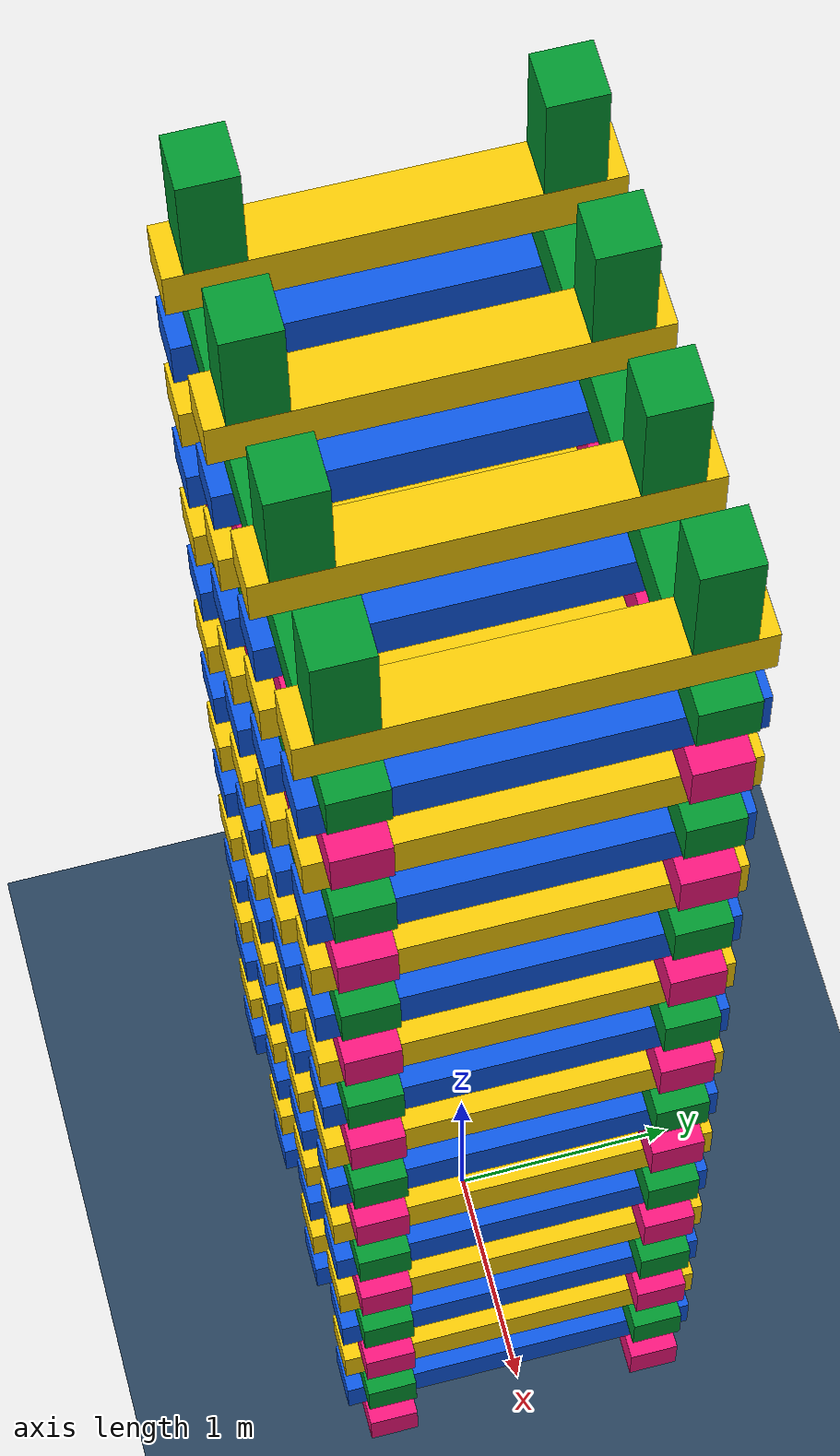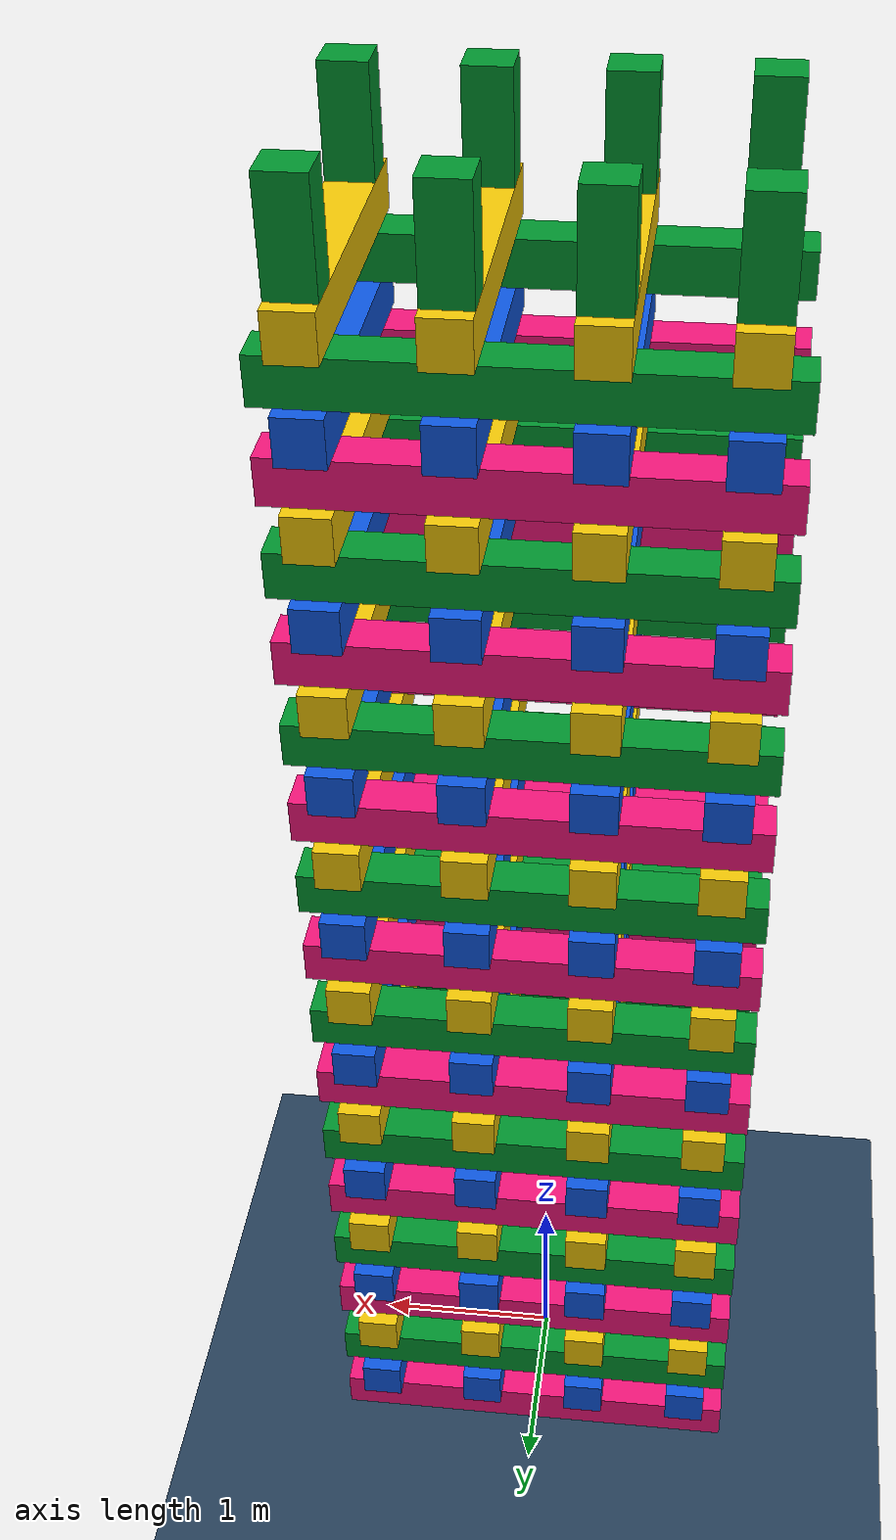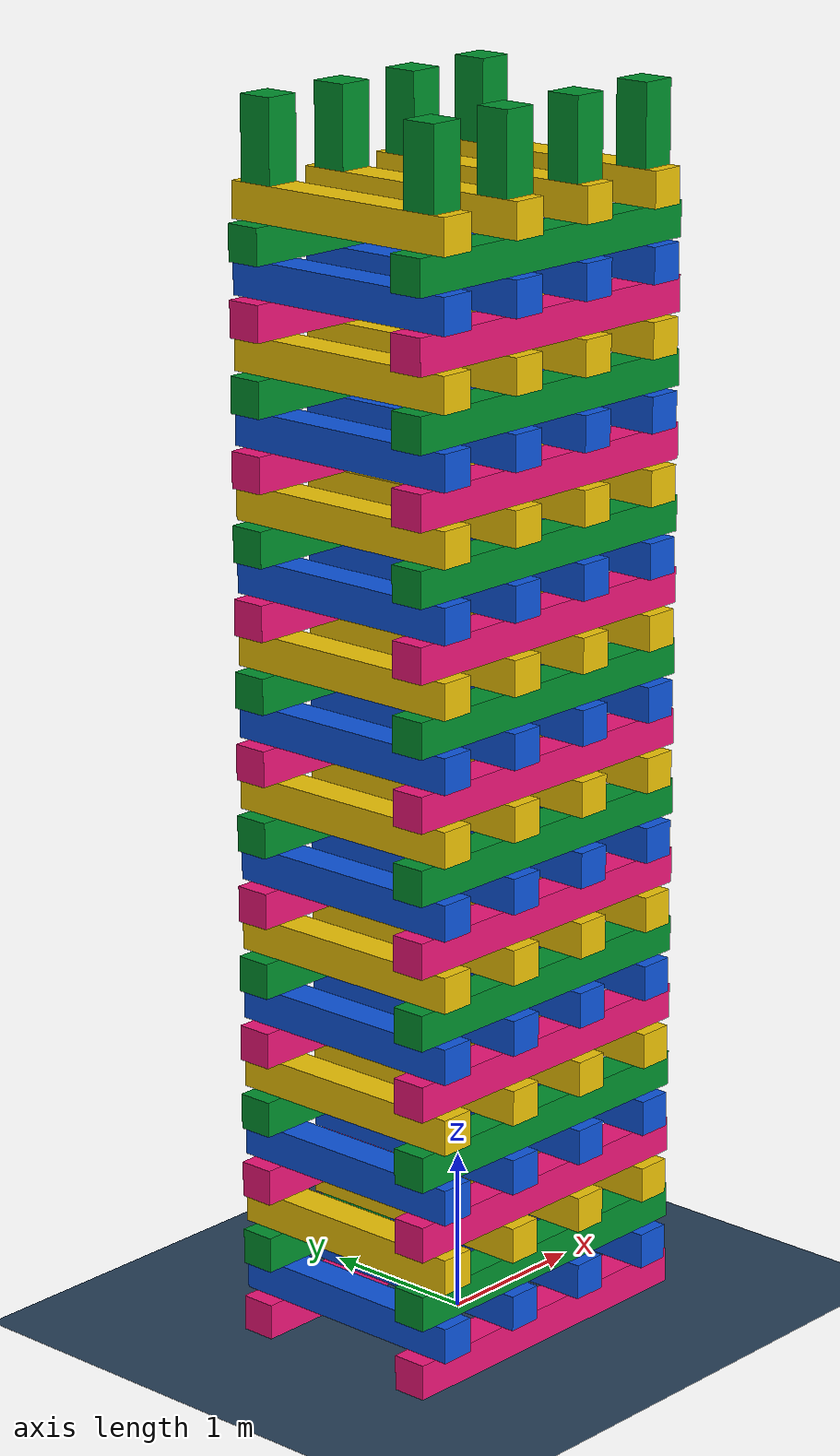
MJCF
<mujoco>
  <visual>
    <headlight diffuse="0.6 0.6 0.6" ambient="0.1 0.1 0.1" specular="0 0 0"/>
    <rgba haze="0.15 0.25 0.35 1"/>
    <global azimuth="130" elevation="-18"/>
  </visual>
  <asset>
    <texture type="skybox" builtin="gradient" rgb1="0.3 0.5 0.7" rgb2="0 0 0" width="512" height="3072"/>
    <texture type="2d" name="groundplane" builtin="checker" mark="edge" rgb1="0.2 0.3 0.4" rgb2="0.1 0.2 0.3" markrgb="0.8 0.8 0.8" width="300" height="300"/>
    <material name="groundplane" texture="groundplane" texuniform="true" texrepeat="5 5" reflectance="0.2"/>
  </asset>
  <worldbody>
    <light pos="0 0 1.5" dir="0 0 -1" directional="true"/>
    <geom name="floor" size="0 0 0.05" type="plane" material="groundplane"/>
    <body pos="0.0000 -0.6200 0.1100" euler="0 0 0">
      <geom type="box" size="1.1200 0.1100 0.1100" rgba="0.950 0.080 0.480 1"/>
      <freejoint/>
    </body>
    <body pos="0.0000 0.6200 0.1100" euler="0 0 0">
      <geom type="box" size="1.1200 0.1100 0.1100" rgba="0.950 0.080 0.480 1"/>
      <freejoint/>
    </body>
    <body pos="-0.9000 0.0000 0.3300" euler="0 0 0">
      <geom type="box" size="0.1100 0.8064 0.1100" rgba="0.050 0.340 0.880 1"/>
      <freejoint/>
    </body>
    <body pos="-0.3000 0.0000 0.3300" euler="0 0 0">
      <geom type="box" size="0.1100 0.8064 0.1100" rgba="0.050 0.340 0.880 1"/>
      <freejoint/>
    </body>
    <body pos="0.3000 0.0000 0.3300" euler="0 0 0">
      <geom type="box" size="0.1100 0.8064 0.1100" rgba="0.050 0.340 0.880 1"/>
      <freejoint/>
    </body>
    <body pos="0.9000 0.0000 0.3300" euler="0 0 0">
      <geom type="box" size="0.1100 0.8064 0.1100" rgba="0.050 0.340 0.880 1"/>
      <freejoint/>
    </body>
    <body pos="0.0000 -0.6200 0.5500" euler="0 0 0">
      <geom type="box" size="1.1200 0.1100 0.1100" rgba="0.000 0.580 0.180 1"/>
      <freejoint/>
    </body>
    <body pos="0.0000 0.6200 0.5500" euler="0 0 0">
      <geom type="box" size="1.1200 0.1100 0.1100" rgba="0.000 0.580 0.180 1"/>
      <freejoint/>
    </body>
    <body pos="-0.9000 0.0000 0.7700" euler="0 0 0">
      <geom type="box" size="0.1100 0.8064 0.1100" rgba="0.950 0.780 0.020 1"/>
      <freejoint/>
    </body>
    <body pos="-0.3000 0.0000 0.7700" euler="0 0 0">
      <geom type="box" size="0.1100 0.8064 0.1100" rgba="0.950 0.780 0.020 1"/>
      <freejoint/>
    </body>
    <body pos="0.3000 0.0000 0.7700" euler="0 0 0">
      <geom type="box" size="0.1100 0.8064 0.1100" rgba="0.950 0.780 0.020 1"/>
      <freejoint/>
    </body>
    <body pos="0.9000 0.0000 0.7700" euler="0 0 0">
      <geom type="box" size="0.1100 0.8064 0.1100" rgba="0.950 0.780 0.020 1"/>
      <freejoint/>
    </body>
    <body pos="0.0000 -0.6200 0.9900" euler="0 0 0">
      <geom type="box" size="1.1200 0.1100 0.1100" rgba="0.950 0.080 0.480 1"/>
      <freejoint/>
    </body>
    <body pos="0.0000 0.6200 0.9900" euler="0 0 0">
      <geom type="box" size="1.1200 0.1100 0.1100" rgba="0.950 0.080 0.480 1"/>
      <freejoint/>
    </body>
    <body pos="-0.9000 0.0000 1.2100" euler="0 0 0">
      <geom type="box" size="0.1100 0.8064 0.1100" rgba="0.050 0.340 0.880 1"/>
      <freejoint/>
    </body>
    <body pos="-0.3000 0.0000 1.2100" euler="0 0 0">
      <geom type="box" size="0.1100 0.8064 0.1100" rgba="0.050 0.340 0.880 1"/>
      <freejoint/>
    </body>
    <body pos="0.3000 0.0000 1.2100" euler="0 0 0">
      <geom type="box" size="0.1100 0.8064 0.1100" rgba="0.050 0.340 0.880 1"/>
      <freejoint/>
    </body>
    <body pos="0.9000 0.0000 1.2100" euler="0 0 0">
      <geom type="box" size="0.1100 0.8064 0.1100" rgba="0.050 0.340 0.880 1"/>
      <freejoint/>
    </body>
    <body pos="0.0000 -0.6200 1.4300" euler="0 0 0">
      <geom type="box" size="1.1200 0.1100 0.1100" rgba="0.000 0.580 0.180 1"/>
      <freejoint/>
    </body>
    <body pos="0.0000 0.6200 1.4300" euler="0 0 0">
      <geom type="box" size="1.1200 0.1100 0.1100" rgba="0.000 0.580 0.180 1"/>
      <freejoint/>
    </body>
    <body pos="-0.9000 0.0000 1.6500" euler="0 0 0">
      <geom type="box" size="0.1100 0.8064 0.1100" rgba="0.950 0.780 0.020 1"/>
      <freejoint/>
    </body>
    <body pos="-0.3000 0.0000 1.6500" euler="0 0 0">
      <geom type="box" size="0.1100 0.8064 0.1100" rgba="0.950 0.780 0.020 1"/>
      <freejoint/>
    </body>
    <body pos="0.3000 0.0000 1.6500" euler="0 0 0">
      <geom type="box" size="0.1100 0.8064 0.1100" rgba="0.950 0.780 0.020 1"/>
      <freejoint/>
    </body>
    <body pos="0.9000 0.0000 1.6500" euler="0 0 0">
      <geom type="box" size="0.1100 0.8064 0.1100" rgba="0.950 0.780 0.020 1"/>
      <freejoint/>
    </body>
    <body pos="0.0000 -0.6200 1.8700" euler="0 0 0">
      <geom type="box" size="1.1200 0.1100 0.1100" rgba="0.950 0.080 0.480 1"/>
      <freejoint/>
    </body>
    <body pos="0.0000 0.6200 1.8700" euler="0 0 0">
      <geom type="box" size="1.1200 0.1100 0.1100" rgba="0.950 0.080 0.480 1"/>
      <freejoint/>
    </body>
    <body pos="-0.9000 0.0000 2.0900" euler="0 0 0">
      <geom type="box" size="0.1100 0.8064 0.1100" rgba="0.050 0.340 0.880 1"/>
      <freejoint/>
    </body>
    <body pos="-0.3000 0.0000 2.0900" euler="0 0 0">
      <geom type="box" size="0.1100 0.8064 0.1100" rgba="0.050 0.340 0.880 1"/>
      <freejoint/>
    </body>
    <body pos="0.3000 0.0000 2.0900" euler="0 0 0">
      <geom type="box" size="0.1100 0.8064 0.1100" rgba="0.050 0.340 0.880 1"/>
      <freejoint/>
    </body>
    <body pos="0.9000 0.0000 2.0900" euler="0 0 0">
      <geom type="box" size="0.1100 0.8064 0.1100" rgba="0.050 0.340 0.880 1"/>
      <freejoint/>
    </body>
    <body pos="0.0000 -0.6200 2.3100" euler="0 0 0">
      <geom type="box" size="1.1200 0.1100 0.1100" rgba="0.000 0.580 0.180 1"/>
      <freejoint/>
    </body>
    <body pos="0.0000 0.6200 2.3100" euler="0 0 0">
      <geom type="box" size="1.1200 0.1100 0.1100" rgba="0.000 0.580 0.180 1"/>
      <freejoint/>
    </body>
    <body pos="-0.9000 0.0000 2.5300" euler="0 0 0">
      <geom type="box" size="0.1100 0.8064 0.1100" rgba="0.950 0.780 0.020 1"/>
      <freejoint/>
    </body>
    <body pos="-0.3000 0.0000 2.5300" euler="0 0 0">
      <geom type="box" size="0.1100 0.8064 0.1100" rgba="0.950 0.780 0.020 1"/>
      <freejoint/>
    </body>
    <body pos="0.3000 0.0000 2.5300" euler="0 0 0">
      <geom type="box" size="0.1100 0.8064 0.1100" rgba="0.950 0.780 0.020 1"/>
      <freejoint/>
    </body>
    <body pos="0.9000 0.0000 2.5300" euler="0 0 0">
      <geom type="box" size="0.1100 0.8064 0.1100" rgba="0.950 0.780 0.020 1"/>
      <freejoint/>
    </body>
    <body pos="0.0000 -0.6200 2.7500" euler="0 0 0">
      <geom type="box" size="1.1200 0.1100 0.1100" rgba="0.950 0.080 0.480 1"/>
      <freejoint/>
    </body>
    <body pos="0.0000 0.6200 2.7500" euler="0 0 0">
      <geom type="box" size="1.1200 0.1100 0.1100" rgba="0.950 0.080 0.480 1"/>
      <freejoint/>
    </body>
    <body pos="-0.9000 0.0000 2.9700" euler="0 0 0">
      <geom type="box" size="0.1100 0.8064 0.1100" rgba="0.050 0.340 0.880 1"/>
      <freejoint/>
    </body>
    <body pos="-0.3000 0.0000 2.9700" euler="0 0 0">
      <geom type="box" size="0.1100 0.8064 0.1100" rgba="0.050 0.340 0.880 1"/>
      <freejoint/>
    </body>
    <body pos="0.3000 0.0000 2.9700" euler="0 0 0">
      <geom type="box" size="0.1100 0.8064 0.1100" rgba="0.050 0.340 0.880 1"/>
      <freejoint/>
    </body>
    <body pos="0.9000 0.0000 2.9700" euler="0 0 0">
      <geom type="box" size="0.1100 0.8064 0.1100" rgba="0.050 0.340 0.880 1"/>
      <freejoint/>
    </body>
    <body pos="0.0000 -0.6200 3.1900" euler="0 0 0">
      <geom type="box" size="1.1200 0.1100 0.1100" rgba="0.000 0.580 0.180 1"/>
      <freejoint/>
    </body>
    <body pos="0.0000 0.6200 3.1900" euler="0 0 0">
      <geom type="box" size="1.1200 0.1100 0.1100" rgba="0.000 0.580 0.180 1"/>
      <freejoint/>
    </body>
    <body pos="-0.9000 0.0000 3.4100" euler="0 0 0">
      <geom type="box" size="0.1100 0.8064 0.1100" rgba="0.950 0.780 0.020 1"/>
      <freejoint/>
    </body>
    <body pos="-0.3000 0.0000 3.4100" euler="0 0 0">
      <geom type="box" size="0.1100 0.8064 0.1100" rgba="0.950 0.780 0.020 1"/>
      <freejoint/>
    </body>
    <body pos="0.3000 0.0000 3.4100" euler="0 0 0">
      <geom type="box" size="0.1100 0.8064 0.1100" rgba="0.950 0.780 0.020 1"/>
      <freejoint/>
    </body>
    <body pos="0.9000 0.0000 3.4100" euler="0 0 0">
      <geom type="box" size="0.1100 0.8064 0.1100" rgba="0.950 0.780 0.020 1"/>
      <freejoint/>
    </body>
    <body pos="0.0000 -0.6200 3.6300" euler="0 0 0">
      <geom type="box" size="1.1200 0.1100 0.1100" rgba="0.950 0.080 0.480 1"/>
      <freejoint/>
    </body>
    <body pos="0.0000 0.6200 3.6300" euler="0 0 0">
      <geom type="box" size="1.1200 0.1100 0.1100" rgba="0.950 0.080 0.480 1"/>
      <freejoint/>
    </body>
    <body pos="-0.9000 0.0000 3.8500" euler="0 0 0">
      <geom type="box" size="0.1100 0.8064 0.1100" rgba="0.050 0.340 0.880 1"/>
      <freejoint/>
    </body>
    <body pos="-0.3000 0.0000 3.8500" euler="0 0 0">
      <geom type="box" size="0.1100 0.8064 0.1100" rgba="0.050 0.340 0.880 1"/>
      <freejoint/>
    </body>
    <body pos="0.3000 0.0000 3.8500" euler="0 0 0">
      <geom type="box" size="0.1100 0.8064 0.1100" rgba="0.050 0.340 0.880 1"/>
      <freejoint/>
    </body>
    <body pos="0.9000 0.0000 3.8500" euler="0 0 0">
      <geom type="box" size="0.1100 0.8064 0.1100" rgba="0.050 0.340 0.880 1"/>
      <freejoint/>
    </body>
    <body pos="0.0000 -0.6200 4.0700" euler="0 0 0">
      <geom type="box" size="1.1200 0.1100 0.1100" rgba="0.000 0.580 0.180 1"/>
      <freejoint/>
    </body>
    <body pos="0.0000 0.6200 4.0700" euler="0 0 0">
      <geom type="box" size="1.1200 0.1100 0.1100" rgba="0.000 0.580 0.180 1"/>
      <freejoint/>
    </body>
    <body pos="-0.9000 0.0000 4.2900" euler="0 0 0">
      <geom type="box" size="0.1100 0.8064 0.1100" rgba="0.950 0.780 0.020 1"/>
      <freejoint/>
    </body>
    <body pos="-0.3000 0.0000 4.2900" euler="0 0 0">
      <geom type="box" size="0.1100 0.8064 0.1100" rgba="0.950 0.780 0.020 1"/>
      <freejoint/>
    </body>
    <body pos="0.3000 0.0000 4.2900" euler="0 0 0">
      <geom type="box" size="0.1100 0.8064 0.1100" rgba="0.950 0.780 0.020 1"/>
      <freejoint/>
    </body>
    <body pos="0.9000 0.0000 4.2900" euler="0 0 0">
      <geom type="box" size="0.1100 0.8064 0.1100" rgba="0.950 0.780 0.020 1"/>
      <freejoint/>
    </body>
    <body pos="0.0000 -0.6200 4.5100" euler="0 0 0">
      <geom type="box" size="1.1200 0.1100 0.1100" rgba="0.950 0.080 0.480 1"/>
      <freejoint/>
    </body>
    <body pos="0.0000 0.6200 4.5100" euler="0 0 0">
      <geom type="box" size="1.1200 0.1100 0.1100" rgba="0.950 0.080 0.480 1"/>
      <freejoint/>
    </body>
    <body pos="-0.9000 0.0000 4.7300" euler="0 0 0">
      <geom type="box" size="0.1100 0.8064 0.1100" rgba="0.050 0.340 0.880 1"/>
      <freejoint/>
    </body>
    <body pos="-0.3000 0.0000 4.7300" euler="0 0 0">
      <geom type="box" size="0.1100 0.8064 0.1100" rgba="0.050 0.340 0.880 1"/>
      <freejoint/>
    </body>
    <body pos="0.3000 0.0000 4.7300" euler="0 0 0">
      <geom type="box" size="0.1100 0.8064 0.1100" rgba="0.050 0.340 0.880 1"/>
      <freejoint/>
    </body>
    <body pos="0.9000 0.0000 4.7300" euler="0 0 0">
      <geom type="box" size="0.1100 0.8064 0.1100" rgba="0.050 0.340 0.880 1"/>
      <freejoint/>
    </body>
    <body pos="0.0000 -0.6200 4.9500" euler="0 0 0">
      <geom type="box" size="1.1200 0.1100 0.1100" rgba="0.000 0.580 0.180 1"/>
      <freejoint/>
    </body>
    <body pos="0.0000 0.6200 4.9500" euler="0 0 0">
      <geom type="box" size="1.1200 0.1100 0.1100" rgba="0.000 0.580 0.180 1"/>
      <freejoint/>
    </body>
    <body pos="-0.9000 0.0000 5.1700" euler="0 0 0">
      <geom type="box" size="0.1100 0.8064 0.1100" rgba="0.950 0.780 0.020 1"/>
      <freejoint/>
    </body>
    <body pos="-0.3000 0.0000 5.1700" euler="0 0 0">
      <geom type="box" size="0.1100 0.8064 0.1100" rgba="0.950 0.780 0.020 1"/>
      <freejoint/>
    </body>
    <body pos="0.3000 0.0000 5.1700" euler="0 0 0">
      <geom type="box" size="0.1100 0.8064 0.1100" rgba="0.950 0.780 0.020 1"/>
      <freejoint/>
    </body>
    <body pos="0.9000 0.0000 5.1700" euler="0 0 0">
      <geom type="box" size="0.1100 0.8064 0.1100" rgba="0.950 0.780 0.020 1"/>
      <freejoint/>
    </body>
    <body pos="0.0000 -0.6200 5.3900" euler="0 0 0">
      <geom type="box" size="1.1200 0.1100 0.1100" rgba="0.950 0.080 0.480 1"/>
      <freejoint/>
    </body>
    <body pos="0.0000 0.6200 5.3900" euler="0 0 0">
      <geom type="box" size="1.1200 0.1100 0.1100" rgba="0.950 0.080 0.480 1"/>
      <freejoint/>
    </body>
    <body pos="-0.9000 0.0000 5.6100" euler="0 0 0">
      <geom type="box" size="0.1100 0.8064 0.1100" rgba="0.050 0.340 0.880 1"/>
      <freejoint/>
    </body>
    <body pos="-0.3000 0.0000 5.6100" euler="0 0 0">
      <geom type="box" size="0.1100 0.8064 0.1100" rgba="0.050 0.340 0.880 1"/>
      <freejoint/>
    </body>
    <body pos="0.3000 0.0000 5.6100" euler="0 0 0">
      <geom type="box" size="0.1100 0.8064 0.1100" rgba="0.050 0.340 0.880 1"/>
      <freejoint/>
    </body>
    <body pos="0.9000 0.0000 5.6100" euler="0 0 0">
      <geom type="box" size="0.1100 0.8064 0.1100" rgba="0.050 0.340 0.880 1"/>
      <freejoint/>
    </body>
    <body pos="0.0000 -0.6200 5.8300" euler="0 0 0">
      <geom type="box" size="1.1200 0.1100 0.1100" rgba="0.000 0.580 0.180 1"/>
      <freejoint/>
    </body>
    <body pos="0.0000 0.6200 5.8300" euler="0 0 0">
      <geom type="box" size="1.1200 0.1100 0.1100" rgba="0.000 0.580 0.180 1"/>
      <freejoint/>
    </body>
    <body pos="-0.9000 0.0000 6.0500" euler="0 0 0">
      <geom type="box" size="0.1100 0.8064 0.1100" rgba="0.950 0.780 0.020 1"/>
      <freejoint/>
    </body>
    <body pos="-0.3000 0.0000 6.0500" euler="0 0 0">
      <geom type="box" size="0.1100 0.8064 0.1100" rgba="0.950 0.780 0.020 1"/>
      <freejoint/>
    </body>
    <body pos="0.3000 0.0000 6.0500" euler="0 0 0">
      <geom type="box" size="0.1100 0.8064 0.1100" rgba="0.950 0.780 0.020 1"/>
      <freejoint/>
    </body>
    <body pos="0.9000 0.0000 6.0500" euler="0 0 0">
      <geom type="box" size="0.1100 0.8064 0.1100" rgba="0.950 0.780 0.020 1"/>
      <freejoint/>
    </body>
    <body pos="0.0000 -0.6200 6.2700" euler="0 0 0">
      <geom type="box" size="1.1200 0.1100 0.1100" rgba="0.950 0.080 0.480 1"/>
      <freejoint/>
    </body>
    <body pos="0.0000 0.6200 6.2700" euler="0 0 0">
      <geom type="box" size="1.1200 0.1100 0.1100" rgba="0.950 0.080 0.480 1"/>
      <freejoint/>
    </body>
    <body pos="-0.9000 0.0000 6.4900" euler="0 0 0">
      <geom type="box" size="0.1100 0.8064 0.1100" rgba="0.050 0.340 0.880 1"/>
      <freejoint/>
    </body>
    <body pos="-0.3000 0.0000 6.4900" euler="0 0 0">
      <geom type="box" size="0.1100 0.8064 0.1100" rgba="0.050 0.340 0.880 1"/>
      <freejoint/>
    </body>
    <body pos="0.3000 0.0000 6.4900" euler="0 0 0">
      <geom type="box" size="0.1100 0.8064 0.1100" rgba="0.050 0.340 0.880 1"/>
      <freejoint/>
    </body>
    <body pos="0.9000 0.0000 6.4900" euler="0 0 0">
      <geom type="box" size="0.1100 0.8064 0.1100" rgba="0.050 0.340 0.880 1"/>
      <freejoint/>
    </body>
    <body pos="0.0000 -0.6200 6.7100" euler="0 0 0">
      <geom type="box" size="1.1200 0.1100 0.1100" rgba="0.000 0.580 0.180 1"/>
      <freejoint/>
    </body>
    <body pos="0.0000 0.6200 6.7100" euler="0 0 0">
      <geom type="box" size="1.1200 0.1100 0.1100" rgba="0.000 0.580 0.180 1"/>
      <freejoint/>
    </body>
    <body pos="-0.9000 0.0000 6.9300" euler="0 0 0">
      <geom type="box" size="0.1100 0.8064 0.1100" rgba="0.950 0.780 0.020 1"/>
      <freejoint/>
    </body>
    <body pos="-0.3000 0.0000 6.9300" euler="0 0 0">
      <geom type="box" size="0.1100 0.8064 0.1100" rgba="0.950 0.780 0.020 1"/>
      <freejoint/>
    </body>
    <body pos="0.3000 0.0000 6.9300" euler="0 0 0">
      <geom type="box" size="0.1100 0.8064 0.1100" rgba="0.950 0.780 0.020 1"/>
      <freejoint/>
    </body>
    <body pos="0.9000 0.0000 6.9300" euler="0 0 0">
      <geom type="box" size="0.1100 0.8064 0.1100" rgba="0.950 0.780 0.020 1"/>
      <freejoint/>
    </body>
    <body pos="-0.9000 -0.6200 7.2900" euler="0 0 0">
      <geom type="box" size="0.1100 0.1100 0.2500" rgba="0.000 0.580 0.180 1"/>
      <freejoint/>
    </body>
    <body pos="-0.9000 0.6200 7.2900" euler="0 0 0">
      <geom type="box" size="0.1100 0.1100 0.2500" rgba="0.000 0.580 0.180 1"/>
      <freejoint/>
    </body>
    <body pos="-0.3000 -0.6200 7.2900" euler="0 0 0">
      <geom type="box" size="0.1100 0.1100 0.2500" rgba="0.000 0.580 0.180 1"/>
      <freejoint/>
    </body>
    <body pos="-0.3000 0.6200 7.2900" euler="0 0 0">
      <geom type="box" size="0.1100 0.1100 0.2500" rgba="0.000 0.580 0.180 1"/>
      <freejoint/>
    </body>
    <body pos="0.3000 -0.6200 7.2900" euler="0 0 0">
      <geom type="box" size="0.1100 0.1100 0.2500" rgba="0.000 0.580 0.180 1"/>
      <freejoint/>
    </body>
    <body pos="0.3000 0.6200 7.2900" euler="0 0 0">
      <geom type="box" size="0.1100 0.1100 0.2500" rgba="0.000 0.580 0.180 1"/>
      <freejoint/>
    </body>
    <body pos="0.9000 -0.6200 7.2900" euler="0 0 0">
      <geom type="box" size="0.1100 0.1100 0.2500" rgba="0.000 0.580 0.180 1"/>
      <freejoint/>
    </body>
    <body pos="0.9000 0.6200 7.2900" euler="0 0 0">
      <geom type="box" size="0.1100 0.1100 0.2500" rgba="0.000 0.580 0.180 1"/>
      <freejoint/>
    </body>
  </worldbody>
</mujoco>
